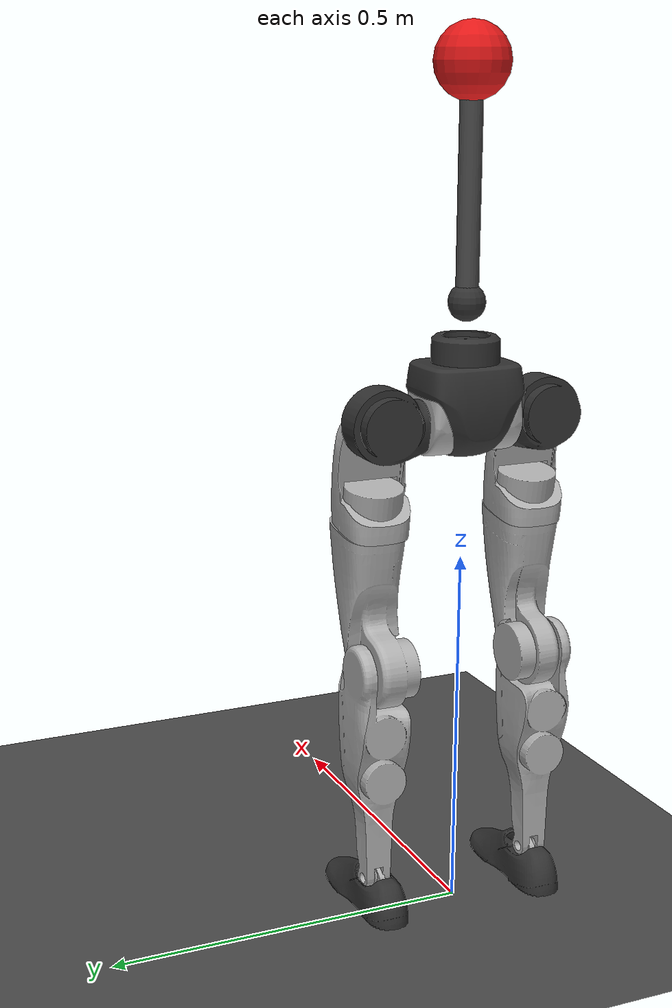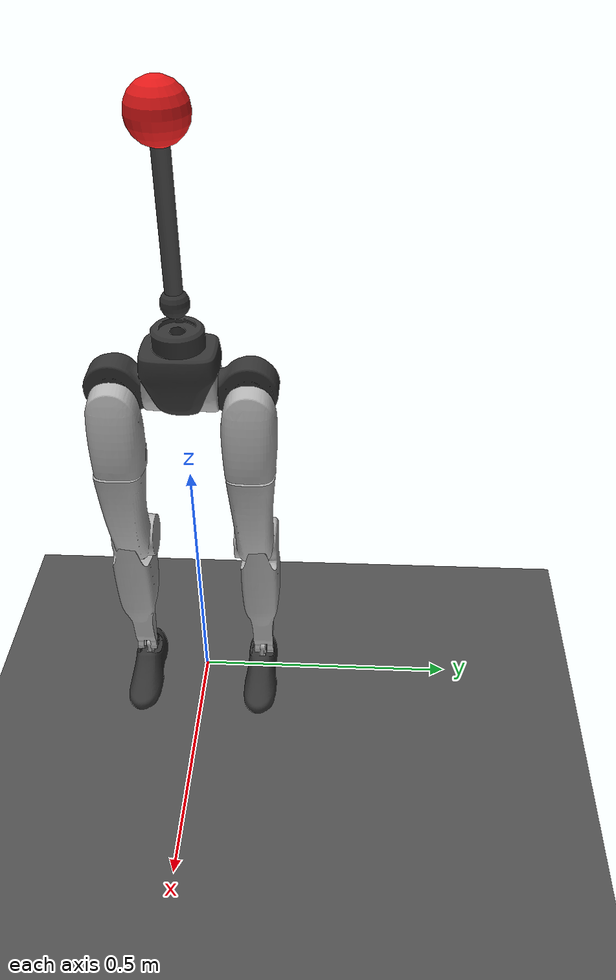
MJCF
<mujoco model="g1_pendulum_balance">

  <compiler angle="radian" meshdir="assets" />

  <option timestep="0.002"
    gravity="0 0 -9.81"
    integrator="implicitfast" />

  <visual>
    <headlight ambient="0.4 0.4 0.4" diffuse="0.8 0.8 0.8" />
    <rgba contactpoint="0.9 0.1 0.1 1" />
  </visual>

  <default>
    <default class="g1">
      <site rgba="1 0 0 1" size="0.01" group="5" />
      <!-- Low damping for natural fall dynamics -->
      <joint armature="0.01" damping="0.1" frictionloss="0.05" />
      <default class="visual">
        <geom group="2" type="mesh" contype="0" conaffinity="0"
          density="0" material="metal" />
      </default>
      <default class="collision">
        <geom group="3" type="mesh" />
        <default class="foot">
          <geom type="sphere" size="0.005" priority="1"
            friction="0.6" condim="3" />
        </default>
      </default>
    </default>

    <!-- Pendulum actuator — high kp for responsive COM shifting -->
    <default class="pendulum">
      <position kp="800" dampratio="1" ctrlrange="-0.785 0.785" />
    </default>

    <!-- Leg actuator — standard G1 gains -->
    <default class="leg">
      <position kp="300" dampratio="1" inheritrange="1" />
    </default>
  </default>

  <asset>
    <material name="black" rgba="0.2 0.2 0.2 1" />
    <material name="metal" rgba="0.7 0.7 0.7 1" />
    <material name="red_mass" rgba="0.9 0.1 0.1 1" />
    <material name="dark_rod" rgba="0.3 0.3 0.3 1" />

    <mesh file="pelvis.STL" />
    <mesh file="pelvis_contour_link.STL" />
    <mesh file="left_hip_pitch_link.STL" />
    <mesh file="left_hip_roll_link.STL" />
    <mesh file="left_hip_yaw_link.STL" />
    <mesh file="left_knee_link.STL" />
    <mesh file="left_ankle_pitch_link.STL" />
    <mesh file="left_ankle_roll_link.STL" />
    <mesh file="right_hip_pitch_link.STL" />
    <mesh file="right_hip_roll_link.STL" />
    <mesh file="right_hip_yaw_link.STL" />
    <mesh file="right_knee_link.STL" />
    <mesh file="right_ankle_pitch_link.STL" />
    <mesh file="right_ankle_roll_link.STL" />
  </asset>

  <worldbody>

    <light pos="0 0 4" dir="0 0 -1" directional="true" />

    <!-- Ground plane -->
    <geom name="ground" type="plane" size="10 10 0.1"
      rgba="0.3 0.3 0.3 1" friction="0.8 0.1 0.01" />

    <body name="pelvis" pos="0 0 0.793" childclass="g1">
      <inertial pos="0 0 -0.07605" quat="1 0 -0.000399148 0"
        mass="3.813" diaginertia="0.010549 0.0093089 0.0079184" />
      <freejoint name="floating_base_joint" />
      <geom class="visual" material="black" mesh="pelvis" />
      <geom class="visual" mesh="pelvis_contour_link" />
      <geom class="collision" mesh="pelvis_contour_link" />
      <site name="imu_in_pelvis" pos="0.04525 0 -0.08339" size="0.01" />

      <body name="pendulum_base" pos="0 0 0.05">
        <inertial pos="0 0 0" mass="0.1"
          diaginertia="0.0001 0.0001 0.0001" />

        <!-- Roll axis — counteracts lateral falls -->
        <joint name="pendulum_roll_joint"
          axis="1 0 0"
          range="-0.785 0.785"
          damping="2.0"
          actuatorfrcrange="-80 80" />

        <!-- Pivot marker -->
        <geom type="sphere" size="0.025" material="black"
          contype="0" conaffinity="0" />

        <body name="pendulum_bob" pos="0 0 0">
          <!-- 5kg mass at 0.3m above pelvis -->
          <!-- This is the key: heavy mass at height = large torque -->
          <inertial pos="0 0 0.3" mass="5.0"
            diaginertia="0.05 0.05 0.01" />

          <!-- Pitch axis — counteracts forward/backward falls -->
          <joint name="pendulum_pitch_joint"
            axis="0 1 0"
            range="-0.785 0.785"
            damping="2.0"
            actuatorfrcrange="-80 80" />

          <!-- Rod visual -->
          <geom type="cylinder" fromto="0 0 0  0 0 0.28"
            size="0.015" material="dark_rod"
            contype="0" conaffinity="0" />

          <!-- Heavy mass bob — the red sphere -->
          <!-- 5kg here vs ~15kg total robot = significant COM shift -->
          <geom type="sphere" pos="0 0 0.3" size="0.05"
            material="red_mass"
            contype="1" conaffinity="1" />

          <!-- IMU site on pendulum tip -->
          <site name="pendulum_tip" pos="0 0 0.3" size="0.01" />
        </body>
      </body>

      <!-- ═══════════════════════════════════════════════════
           LEFT LEG — human physiological joint limits
           ═══════════════════════════════════════════════════ -->
      <body name="left_hip_pitch_link" pos="0 0.064452 -0.1027">
        <inertial pos="0.002741 0.047791 -0.02606"
          quat="0.954862 0.293964 0.0302556 0.030122"
          mass="1.35" diaginertia="0.00181517 0.00153422 0.00116212" />
        <joint name="left_hip_pitch_joint" axis="0 1 0"
          range="-0.52 2.09" />
        <geom class="visual" material="black" mesh="left_hip_pitch_link" />
        <geom class="collision" material="black" mesh="left_hip_pitch_link" />
        <body name="left_hip_roll_link" pos="0 0.052 -0.030465"
          quat="0.996179 0 -0.0873386 0">
          <inertial pos="0.029812 -0.001045 -0.087934"
            quat="0.977808 -1.97119e-05 0.205576 -0.0403793"
            mass="1.52" diaginertia="0.00254986 0.00241169 0.00148755" />
          <joint name="left_hip_roll_joint" axis="1 0 0"
            range="-0.79 0.79" />
          <geom class="visual" mesh="left_hip_roll_link" />
          <geom class="collision" mesh="left_hip_roll_link" />
          <body name="left_hip_yaw_link" pos="0.025001 0 -0.12412">
            <inertial pos="-0.057709 -0.010981 -0.15078"
              quat="0.600598 0.15832 0.223482 0.751181"
              mass="1.702" diaginertia="0.00776166 0.00717575 0.00160139" />
            <joint name="left_hip_yaw_joint" axis="0 0 1"
              range="-0.79 0.79" />
            <geom class="visual" mesh="left_hip_yaw_link" />
            <geom class="collision" mesh="left_hip_yaw_link" />
            <body name="left_knee_link" pos="-0.078273 0.0021489 -0.17734"
              quat="0.996179 0 0.0873386 0">
              <inertial pos="0.005457 0.003964 -0.12074"
                quat="0.923418 -0.0327699 0.0158246 0.382067"
                mass="1.932" diaginertia="0.0113804 0.0112778 0.00146458" />
              <joint name="left_knee_joint" axis="0 1 0"
                range="0.0 2.44" />
              <geom class="visual" mesh="left_knee_link" />
              <geom class="collision" mesh="left_knee_link" />
              <body name="left_ankle_pitch_link" pos="0 -9.4445e-05 -0.30001">
                <inertial pos="-0.007269 0 0.011137"
                  quat="0.603053 0.369225 0.369225 0.603053"
                  mass="0.074" diaginertia="1.89e-05 1.40805e-05 6.9195e-06" />
                <joint name="left_ankle_pitch_joint" axis="0 1 0"
                  range="-0.52 0.87" />
                <geom class="visual" mesh="left_ankle_pitch_link" />
                <geom class="collision" mesh="left_ankle_pitch_link" />
                <body name="left_ankle_roll_link" pos="0 0 -0.017558">
                  <inertial pos="0.026505 0 -0.016425"
                    quat="-0.000481092 0.728482 -0.000618967 0.685065"
                    mass="0.608" diaginertia="0.00167218 0.0016161 0.000217621" />
                  <joint name="left_ankle_roll_joint" axis="1 0 0"
                    range="-0.35 0.35" />
                  <geom class="visual" material="black" mesh="left_ankle_roll_link" />
                  <geom class="foot" pos="-0.05  0.025 -0.03" />
                  <geom class="foot" pos="-0.05 -0.025 -0.03" />
                  <geom class="foot" pos=" 0.12  0.03  -0.03" />
                  <geom class="foot" pos=" 0.12 -0.03  -0.03" />
                  <site name="left_foot" />
                </body>
              </body>
            </body>
          </body>
        </body>
      </body>

      <!-- ═══════════════════════════════════════════════════
           RIGHT LEG — human physiological joint limits
           ═══════════════════════════════════════════════════ -->
      <body name="right_hip_pitch_link" pos="0 -0.064452 -0.1027">
        <inertial pos="0.002741 -0.047791 -0.02606"
          quat="0.954862 -0.293964 0.0302556 -0.030122"
          mass="1.35" diaginertia="0.00181517 0.00153422 0.00116212" />
        <joint name="right_hip_pitch_joint" axis="0 1 0"
          range="-0.52 2.09" />
        <geom class="visual" material="black" mesh="right_hip_pitch_link" />
        <geom class="collision" material="black" mesh="right_hip_pitch_link" />
        <body name="right_hip_roll_link" pos="0 -0.052 -0.030465"
          quat="0.996179 0 -0.0873386 0">
          <inertial pos="0.029812 0.001045 -0.087934"
            quat="0.977808 1.97119e-05 0.205576 0.0403793"
            mass="1.52" diaginertia="0.00254986 0.00241169 0.00148755" />
          <joint name="right_hip_roll_joint" axis="1 0 0"
            range="-0.79 0.79" />
          <geom class="visual" mesh="right_hip_roll_link" />
          <geom class="collision" mesh="right_hip_roll_link" />
          <body name="right_hip_yaw_link" pos="0.025001 0 -0.12412">
            <inertial pos="-0.057709 0.010981 -0.15078"
              quat="0.751181 0.223482 0.15832 0.600598"
              mass="1.702" diaginertia="0.00776166 0.00717575 0.00160139" />
            <joint name="right_hip_yaw_joint" axis="0 0 1"
              range="-0.79 0.79" />
            <geom class="visual" mesh="right_hip_yaw_link" />
            <geom class="collision" mesh="right_hip_yaw_link" />
            <body name="right_knee_link" pos="-0.078273 -0.0021489 -0.17734"
              quat="0.996179 0 0.0873386 0">
              <inertial pos="0.005457 -0.003964 -0.12074"
                quat="0.923439 0.0345276 0.0116333 -0.382012"
                mass="1.932" diaginertia="0.011374 0.0112843 0.00146452" />
              <joint name="right_knee_joint" axis="0 1 0"
                range="0.0 2.44" />
              <geom class="visual" mesh="right_knee_link" />
              <geom class="collision" mesh="right_knee_link" />
              <body name="right_ankle_pitch_link" pos="0 9.4445e-05 -0.30001">
                <inertial pos="-0.007269 0 0.011137"
                  quat="0.603053 0.369225 0.369225 0.603053"
                  mass="0.074" diaginertia="1.89e-05 1.40805e-05 6.9195e-06" />
                <joint name="right_ankle_pitch_joint" axis="0 1 0"
                  range="-0.52 0.87" />
                <geom class="visual" mesh="right_ankle_pitch_link" />
                <geom class="collision" mesh="right_ankle_pitch_link" />
                <body name="right_ankle_roll_link" pos="0 0 -0.017558">
                  <inertial pos="0.026505 0 -0.016425"
                    quat="0.000481092 0.728482 0.000618967 0.685065"
                    mass="0.608" diaginertia="0.00167218 0.0016161 0.000217621" />
                  <joint name="right_ankle_roll_joint" axis="1 0 0"
                    range="-0.35 0.35" />
                  <geom class="visual" material="black" mesh="right_ankle_roll_link" />
                  <geom class="foot" pos="-0.05  0.025 -0.03" />
                  <geom class="foot" pos="-0.05 -0.025 -0.03" />
                  <geom class="foot" pos=" 0.12  0.03  -0.03" />
                  <geom class="foot" pos=" 0.12 -0.03  -0.03" />
                  <site name="right_foot" />
                </body>
              </body>
            </body>
          </body>
        </body>
      </body>

    </body>
  </worldbody>

  <!-- ═══════════════════════════════════════════════════
       ACTUATORS — 14 total
       2 pendulum + 12 leg joints
       ═══════════════════════════════════════════════════ -->
  <actuator>
    <!-- Pendulum — COM shifting -->
    <position class="pendulum" name="pendulum_roll"
      joint="pendulum_roll_joint" />
    <position class="pendulum" name="pendulum_pitch"
      joint="pendulum_pitch_joint" />

    <!-- Left leg -->
    <position class="leg" name="left_hip_pitch"
      joint="left_hip_pitch_joint" />
    <position class="leg" name="left_hip_roll"
      joint="left_hip_roll_joint" />
    <position class="leg" name="left_hip_yaw"
      joint="left_hip_yaw_joint" />
    <position class="leg" name="left_knee"
      joint="left_knee_joint" />
    <position class="leg" name="left_ankle_pitch"
      joint="left_ankle_pitch_joint" />
    <position class="leg" name="left_ankle_roll"
      joint="left_ankle_roll_joint" />

    <!-- Right leg -->
    <position class="leg" name="right_hip_pitch"
      joint="right_hip_pitch_joint" />
    <position class="leg" name="right_hip_roll"
      joint="right_hip_roll_joint" />
    <position class="leg" name="right_hip_yaw"
      joint="right_hip_yaw_joint" />
    <position class="leg" name="right_knee"
      joint="right_knee_joint" />
    <position class="leg" name="right_ankle_pitch"
      joint="right_ankle_pitch_joint" />
    <position class="leg" name="right_ankle_roll"
      joint="right_ankle_roll_joint" />
  </actuator>

  <!-- ═══════════════════════════════════════════════════
       SENSORS
       ═══════════════════════════════════════════════════ -->
  <sensor>
    <!-- Pelvis IMU -->
    <gyro site="imu_in_pelvis"
      name="imu-pelvis-angular-velocity"
      cutoff="34.9" noise="0.0005" />
    <accelerometer site="imu_in_pelvis"
      name="imu-pelvis-linear-acceleration"
      cutoff="157" noise="0.01" />

    <!-- Pendulum tip position — tells you where COM is shifting -->
    <framepos name="pendulum_tip_pos"
      objtype="site"
      objname="pendulum_tip" />

    <!-- Joint sensors for all 14 joints -->
    <jointpos name="pendulum_roll_pos" joint="pendulum_roll_joint" />
    <jointvel name="pendulum_roll_vel" joint="pendulum_roll_joint" />
    <jointpos name="pendulum_pitch_pos" joint="pendulum_pitch_joint" />
    <jointvel name="pendulum_pitch_vel" joint="pendulum_pitch_joint" />

    <jointpos name="l_hip_pitch_pos" joint="left_hip_pitch_joint" />
    <jointvel name="l_hip_pitch_vel" joint="left_hip_pitch_joint" />
    <jointpos name="l_hip_roll_pos" joint="left_hip_roll_joint" />
    <jointvel name="l_hip_roll_vel" joint="left_hip_roll_joint" />
    <jointpos name="l_knee_pos" joint="left_knee_joint" />
    <jointvel name="l_knee_vel" joint="left_knee_joint" />
    <jointpos name="l_ankle_pitch_pos" joint="left_ankle_pitch_joint" />
    <jointvel name="l_ankle_pitch_vel" joint="left_ankle_pitch_joint" />
    <jointpos name="r_hip_pitch_pos" joint="right_hip_pitch_joint" />
    <jointvel name="r_hip_pitch_vel" joint="right_hip_pitch_joint" />
    <jointpos name="r_hip_roll_pos" joint="right_hip_roll_joint" />
    <jointvel name="r_hip_roll_vel" joint="right_hip_roll_joint" />
    <jointpos name="r_knee_pos" joint="right_knee_joint" />
    <jointvel name="r_knee_vel" joint="right_knee_joint" />
    <jointpos name="r_ankle_pitch_pos" joint="right_ankle_pitch_joint" />
    <jointvel name="r_ankle_pitch_vel" joint="right_ankle_pitch_joint" />
  </sensor>.

  <!-- Standing keyframe — legs in stable pose, pendulum centred -->
  <keyframe>
    <key name="stand"
      qpos="0 0 0.79 1 0 0 0
               0 0
               0 0 0 0.1 -0.05 0
               0 0 0 0.1 -0.05 0"
      ctrl="0 0
               0 0 0 0.1 -0.05 0
               0 0 0 0.1 -0.05 0" />
  </keyframe>

</mujoco>
